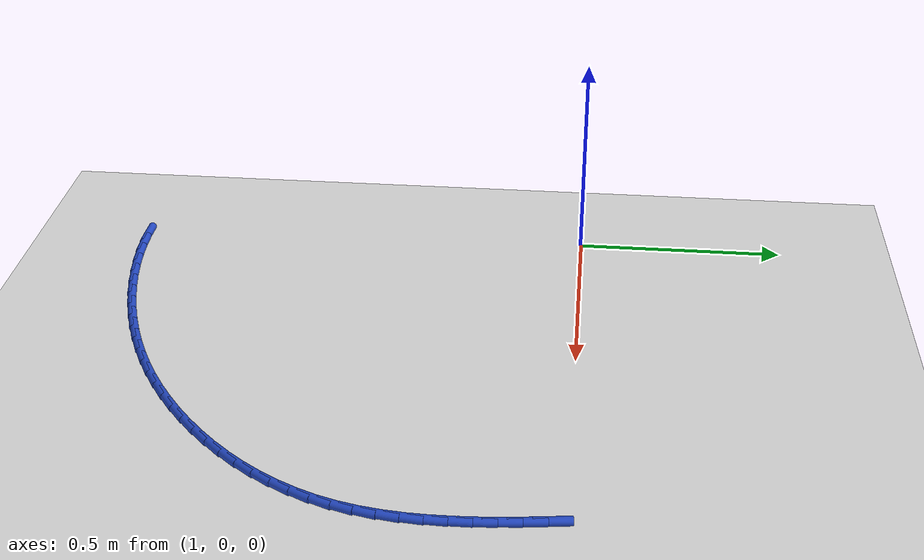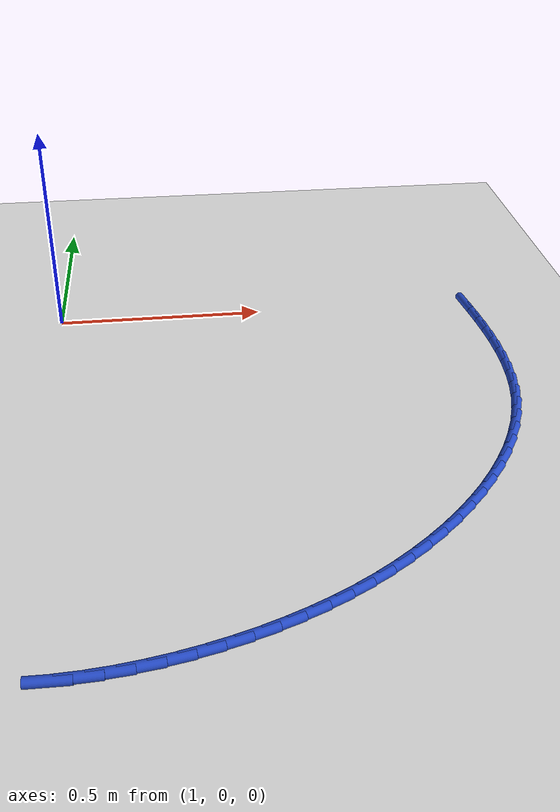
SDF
<sdf version="1.6">
 <world name="default">
  <model name="ground_plane">
   <static>1</static>
   <link name="link">
    <collision name="collision">
     <geometry><plane><normal>0 0 1</normal><size>100 100</size></plane></geometry>
     <surface><friction><ode><mu>100</mu><mu2>50</mu2></ode></friction></surface>
    </collision>
    <visual name="visual">
     <cast_shadows>0</cast_shadows>
     <geometry><plane><normal>0 0 1</normal><size>100 100</size></plane></geometry>
     <material>
      <script><uri>file://media/materials/scripts/gazebo.material</uri><name>Gazebo/WhiteGlow</name></script>
     </material>
    </visual>
   </link>
  </model>
  <model name="line">
   <link name="link_70">
    <pose>2.042514875771617 -0.028501425075891207 0.01 0 1.57 -1.4499922038196433</pose>
    <collision name="collision">
     <geometry><cylinder><radius>0.01</radius><length>0.08</length></cylinder></geometry>
    </collision>
    <visual name="visual">
     <material>
      <script><name>Gazebo/Blue</name><uri>file://media/materials/scripts/gazebo.material</uri></script>
     </material>
     <geometry><cylinder><radius>0.01</radius><length>0.08</length></cylinder></geometry>
    </visual>
   </link>
   <link name="link_71">
    <pose>2.0484158539259787 -0.07711106245376309 0.01 0 1.57 -1.4695109949228355</pose>
    <collision name="collision">
     <geometry><cylinder><radius>0.01</radius><length>0.08</length></cylinder></geometry>
    </collision>
    <visual name="visual">
     <material>
      <script><name>Gazebo/Blue</name><uri>file://media/materials/scripts/gazebo.material</uri></script>
     </material>
     <geometry><cylinder><radius>0.01</radius><length>0.08</length></cylinder></geometry>
    </visual>
   </link>
   <link name="link_72">
    <pose>2.0533560340569417 -0.12571904121435087 0.01 0 1.57 -1.4953580012741503</pose>
    <collision name="collision">
     <geometry><cylinder><radius>0.01</radius><length>0.08</length></cylinder></geometry>
    </collision>
    <visual name="visual">
     <material>
      <script><name>Gazebo/Blue</name><uri>file://media/materials/scripts/gazebo.material</uri></script>
     </material>
     <geometry><cylinder><radius>0.01</radius><length>0.08</length></cylinder></geometry>
    </visual>
   </link>
   <link name="link_73">
    <pose>2.0570218878270365 -0.17422087436894643 0.01 0 1.57 -1.527792261717642</pose>
    <collision name="collision">
     <geometry><cylinder><radius>0.01</radius><length>0.08</length></cylinder></geometry>
    </collision>
    <visual name="visual">
     <material>
      <script><name>Gazebo/Blue</name><uri>file://media/materials/scripts/gazebo.material</uri></script>
     </material>
     <geometry><cylinder><radius>0.01</radius><length>0.08</length></cylinder></geometry>
    </visual>
   </link>
   <link name="link_74">
    <pose>2.059099886898793 -0.22251207492883948 0.01 0 1.57 -1.567115008218786</pose>
    <collision name="collision">
     <geometry><cylinder><radius>0.01</radius><length>0.08</length></cylinder></geometry>
    </collision>
    <visual name="visual">
     <material>
      <script><name>Gazebo/Blue</name><uri>file://media/materials/scripts/gazebo.material</uri></script>
     </material>
     <geometry><cylinder><radius>0.01</radius><length>0.08</length></cylinder></geometry>
    </visual>
   </link>
   <link name="link_75">
    <pose>2.059276502934741 -0.27048815590532194 0.01 0 1.57 1.5279620207617808</pose>
    <collision name="collision">
     <geometry><cylinder><radius>0.01</radius><length>0.08</length></cylinder></geometry>
    </collision>
    <visual name="visual">
     <material>
      <script><name>Gazebo/Blue</name><uri>file://media/materials/scripts/gazebo.material</uri></script>
     </material>
     <geometry><cylinder><radius>0.01</radius><length>0.08</length></cylinder></geometry>
    </visual>
   </link>
   <link name="link_76">
    <pose>2.057238207597412 -0.31804463030968494 0.01 0 1.57 1.4740020768836912</pose>
    <collision name="collision">
     <geometry><cylinder><radius>0.01</radius><length>0.08</length></cylinder></geometry>
    </collision>
    <visual name="visual">
     <material>
      <script><name>Gazebo/Blue</name><uri>file://media/materials/scripts/gazebo.material</uri></script>
     </material>
     <geometry><cylinder><radius>0.01</radius><length>0.08</length></cylinder></geometry>
    </visual>
   </link>
   <link name="link_77">
    <pose>2.0526714725493354 -0.3650770111532199 0.01 0 1.57 1.4124752780973437</pose>
    <collision name="collision">
     <geometry><cylinder><radius>0.01</radius><length>0.08</length></cylinder></geometry>
    </collision>
    <visual name="visual">
     <material>
      <script><name>Gazebo/Blue</name><uri>file://media/materials/scripts/gazebo.material</uri></script>
     </material>
     <geometry><cylinder><radius>0.01</radius><length>0.08</length></cylinder></geometry>
    </visual>
   </link>
   <link name="link_78">
    <pose>2.0452627694530414 -0.4114808114472184 0.01 0 1.57 1.343481986703969</pose>
    <collision name="collision">
     <geometry><cylinder><radius>0.01</radius><length>0.08</length></cylinder></geometry>
    </collision>
    <visual name="visual">
     <material>
      <script><name>Gazebo/Blue</name><uri>file://media/materials/scripts/gazebo.material</uri></script>
     </material>
     <geometry><cylinder><radius>0.01</radius><length>0.08</length></cylinder></geometry>
    </visual>
   </link>
   <link name="link_79">
    <pose>2.034698569971061 -0.45715154420297033 0.01 0 1.57 1.267686488239939</pose>
    <collision name="collision">
     <geometry><cylinder><radius>0.01</radius><length>0.08</length></cylinder></geometry>
    </collision>
    <visual name="visual">
     <material>
      <script><name>Gazebo/Blue</name><uri>file://media/materials/scripts/gazebo.material</uri></script>
     </material>
     <geometry><cylinder><radius>0.01</radius><length>0.08</length></cylinder></geometry>
    </visual>
   </link>
   <link name="link_80">
    <pose>2.020677125272402 -0.5019847372103441 0.01 0 1.57 1.1912250676561806</pose>
    <collision name="collision">
     <geometry><cylinder><radius>0.01</radius><length>0.08</length></cylinder></geometry>
    </collision>
    <visual name="visual">
     <material>
      <script><name>Gazebo/Blue</name><uri>file://media/materials/scripts/gazebo.material</uri></script>
     </material>
     <geometry><cylinder><radius>0.01</radius><length>0.08</length></cylinder></geometry>
    </visual>
   </link>
   <link name="link_81">
    <pose>2.003168109604517 -0.5458762587867815 0.01 0 1.57 1.1196953972168433</pose>
    <collision name="collision">
     <geometry><cylinder><radius>0.01</radius><length>0.08</length></cylinder></geometry>
    </collision>
    <visual name="visual">
     <material>
      <script><name>Gazebo/Blue</name><uri>file://media/materials/scripts/gazebo.material</uri></script>
     </material>
     <geometry><cylinder><radius>0.01</radius><length>0.08</length></cylinder></geometry>
    </visual>
   </link>
   <link name="link_82">
    <pose>1.9824128952608207 -0.5887223181222723 0.01 0 1.57 1.0530714645488164</pose>
    <collision name="collision">
     <geometry><cylinder><radius>0.01</radius><length>0.08</length></cylinder></geometry>
    </collision>
    <visual name="visual">
     <material>
      <script><name>Gazebo/Blue</name><uri>file://media/materials/scripts/gazebo.material</uri></script>
     </material>
     <geometry><cylinder><radius>0.01</radius><length>0.08</length></cylinder></geometry>
    </visual>
   </link>
   <link name="link_83">
    <pose>1.9586646890347275 -0.6304191392543764 0.01 0 1.57 0.9909609513993489</pose>
    <collision name="collision">
     <geometry><cylinder><radius>0.01</radius><length>0.08</length></cylinder></geometry>
    </collision>
    <visual name="visual">
     <material>
      <script><name>Gazebo/Blue</name><uri>file://media/materials/scripts/gazebo.material</uri></script>
     </material>
     <geometry><cylinder><radius>0.01</radius><length>0.08</length></cylinder></geometry>
    </visual>
   </link>
   <link name="link_84">
    <pose>1.9321766977196502 -0.6708629462206556 0.01 0 1.57 0.932897009702139</pose>
    <collision name="collision">
     <geometry><cylinder><radius>0.01</radius><length>0.08</length></cylinder></geometry>
    </collision>
    <visual name="visual">
     <material>
      <script><name>Gazebo/Blue</name><uri>file://media/materials/scripts/gazebo.material</uri></script>
     </material>
     <geometry><cylinder><radius>0.01</radius><length>0.08</length></cylinder></geometry>
    </visual>
   </link>
   <link name="link_85">
    <pose>1.9032021281090032 -0.7099499630586706 0.01 0 1.57 0.8783749944448394</pose>
    <collision name="collision">
     <geometry><cylinder><radius>0.01</radius><length>0.08</length></cylinder></geometry>
    </collision>
    <visual name="visual">
     <material>
      <script><name>Gazebo/Blue</name><uri>file://media/materials/scripts/gazebo.material</uri></script>
     </material>
     <geometry><cylinder><radius>0.01</radius><length>0.08</length></cylinder></geometry>
    </visual>
   </link>
   <link name="link_86">
    <pose>1.8719941869962002 -0.7475764138059832 0.01 0 1.57 0.8268760785502955</pose>
    <collision name="collision">
     <geometry><cylinder><radius>0.01</radius><length>0.08</length></cylinder></geometry>
    </collision>
    <visual name="visual">
     <material>
      <script><name>Gazebo/Blue</name><uri>file://media/materials/scripts/gazebo.material</uri></script>
     </material>
     <geometry><cylinder><radius>0.01</radius><length>0.08</length></cylinder></geometry>
    </visual>
   </link>
   <link name="link_87">
    <pose>1.8388060811746545 -0.7836385225001544 0.01 0 1.57 0.777880195569827</pose>
    <collision name="collision">
     <geometry><cylinder><radius>0.01</radius><length>0.08</length></cylinder></geometry>
    </collision>
    <visual name="visual">
     <material>
      <script><name>Gazebo/Blue</name><uri>file://media/materials/scripts/gazebo.material</uri></script>
     </material>
     <geometry><cylinder><radius>0.01</radius><length>0.08</length></cylinder></geometry>
    </visual>
   </link>
   <link name="link_88">
    <pose>1.8038910174377807 -0.8180325131787443 0.01 0 1.57 0.7308707818596323</pose>
    <collision name="collision">
     <geometry><cylinder><radius>0.01</radius><length>0.08</length></cylinder></geometry>
    </collision>
    <visual name="visual">
     <material>
      <script><name>Gazebo/Blue</name><uri>file://media/materials/scripts/gazebo.material</uri></script>
     </material>
     <geometry><cylinder><radius>0.01</radius><length>0.08</length></cylinder></geometry>
    </visual>
   </link>
   <link name="link_89">
    <pose>1.7675022025789917 -0.8506546098793144 0.01 0 1.57 0.6853301468830977</pose>
    <collision name="collision">
     <geometry><cylinder><radius>0.01</radius><length>0.08</length></cylinder></geometry>
    </collision>
    <visual name="visual">
     <material>
      <script><name>Gazebo/Blue</name><uri>file://media/materials/scripts/gazebo.material</uri></script>
     </material>
     <geometry><cylinder><radius>0.01</radius><length>0.08</length></cylinder></geometry>
    </visual>
   </link>
   <link name="link_90">
    <pose>1.7298921163534886 -0.88140143189524 0.01 0 1.57 0.6404798782260996</pose>
    <collision name="collision">
     <geometry><cylinder><radius>0.01</radius><length>0.08</length></cylinder></geometry>
    </collision>
    <visual name="visual">
     <material>
      <script><name>Gazebo/Blue</name><uri>file://media/materials/scripts/gazebo.material</uri></script>
     </material>
     <geometry><cylinder><radius>0.01</radius><length>0.08</length></cylinder></geometry>
    </visual>
   </link>
   <link name="link_91">
    <pose>1.691235300190117 -0.9102119698507185 0.01 0 1.57 0.5956856967609964</pose>
    <collision name="collision">
     <geometry><cylinder><radius>0.01</radius><length>0.08</length></cylinder></geometry>
    </collision>
    <visual name="visual">
     <material>
      <script><name>Gazebo/Blue</name><uri>file://media/materials/scripts/gazebo.material</uri></script>
     </material>
     <geometry><cylinder><radius>0.01</radius><length>0.08</length></cylinder></geometry>
    </visual>
   </link>
   <link name="link_92">
    <pose>1.6515600447234886 -0.9371047239139053 0.01 0 1.57 0.5510744432334416</pose>
    <collision name="collision">
     <geometry><cylinder><radius>0.01</radius><length>0.08</length></cylinder></geometry>
    </collision>
    <visual name="visual">
     <material>
      <script><name>Gazebo/Blue</name><uri>file://media/materials/scripts/gazebo.material</uri></script>
     </material>
     <geometry><cylinder><radius>0.01</radius><length>0.08</length></cylinder></geometry>
    </visual>
   </link>
   <link name="link_93">
    <pose>1.6108785300907642 -0.9621069527579063 0.01 0 1.57 0.506839103273512</pose>
    <collision name="collision">
     <geometry><cylinder><radius>0.01</radius><length>0.08</length></cylinder></geometry>
    </collision>
    <visual name="visual">
     <material>
      <script><name>Gazebo/Blue</name><uri>file://media/materials/scripts/gazebo.material</uri></script>
     </material>
     <geometry><cylinder><radius>0.01</radius><length>0.08</length></cylinder></geometry>
    </visual>
   </link>
   <link name="link_94">
    <pose>1.569202936429106 -0.9852459150558264 0.01 0 1.57 0.4631637908015234</pose>
    <collision name="collision">
     <geometry><cylinder><radius>0.01</radius><length>0.08</length></cylinder></geometry>
    </collision>
    <visual name="visual">
     <material>
      <script><name>Gazebo/Blue</name><uri>file://media/materials/scripts/gazebo.material</uri></script>
     </material>
     <geometry><cylinder><radius>0.01</radius><length>0.08</length></cylinder></geometry>
    </visual>
   </link>
   <link name="link_95">
    <pose>1.5265454438756747 -1.0065488694807718 0.01 0 1.57 0.4202195637603973</pose>
    <collision name="collision">
     <geometry><cylinder><radius>0.01</radius><length>0.08</length></cylinder></geometry>
    </collision>
    <visual name="visual">
     <material>
      <script><name>Gazebo/Blue</name><uri>file://media/materials/scripts/gazebo.material</uri></script>
     </material>
     <geometry><cylinder><radius>0.01</radius><length>0.08</length></cylinder></geometry>
    </visual>
   </link>
   <link name="link_96">
    <pose>1.4829182325676338 -1.0260430747058478 0.01 0 1.57 0.3781610038826565</pose>
    <collision name="collision">
     <geometry><cylinder><radius>0.01</radius><length>0.08</length></cylinder></geometry>
    </collision>
    <visual name="visual">
     <material>
      <script><name>Gazebo/Blue</name><uri>file://media/materials/scripts/gazebo.material</uri></script>
     </material>
     <geometry><cylinder><radius>0.01</radius><length>0.08</length></cylinder></geometry>
    </visual>
   </link>
   <link name="link_97">
    <pose>1.4383334826421437 -1.0437557894041594 0.01 0 1.57 0.33712370213942944</pose>
    <collision name="collision">
     <geometry><cylinder><radius>0.01</radius><length>0.08</length></cylinder></geometry>
    </collision>
    <visual name="visual">
     <material>
      <script><name>Gazebo/Blue</name><uri>file://media/materials/scripts/gazebo.material</uri></script>
     </material>
     <geometry><cylinder><radius>0.01</radius><length>0.08</length></cylinder></geometry>
    </visual>
   </link>
   <link name="link_98">
    <pose>1.3928033742363664 -1.0597142722488124 0.01 0 1.57 0.2972166234191361</pose>
    <collision name="collision">
     <geometry><cylinder><radius>0.01</radius><length>0.08</length></cylinder></geometry>
    </collision>
    <visual name="visual">
     <material>
      <script><name>Gazebo/Blue</name><uri>file://media/materials/scripts/gazebo.material</uri></script>
     </material>
     <geometry><cylinder><radius>0.01</radius><length>0.08</length></cylinder></geometry>
    </visual>
   </link>
   <link name="link_99">
    <pose>1.3463406262841136 -1.0739453078454801 0.01 0 1.57 0.2578395351621872</pose>
    <collision name="collision">
     <geometry><cylinder><radius>0.01</radius><length>0.08</length></cylinder></geometry>
    </collision>
    <visual name="visual">
     <material>
      <script><name>Gazebo/Blue</name><uri>file://media/materials/scripts/gazebo.material</uri></script>
     </material>
     <geometry><cylinder><radius>0.01</radius><length>0.08</length></cylinder></geometry>
    </visual>
   </link>
   <link name="link_100">
    <pose>1.2990149444193237 -1.0864255402902363 0.01 0 1.57 0.21753600748907764</pose>
    <collision name="collision">
     <geometry><cylinder><radius>0.01</radius><length>0.08</length></cylinder></geometry>
    </collision>
    <visual name="visual">
     <material>
      <script><name>Gazebo/Blue</name><uri>file://media/materials/scripts/gazebo.material</uri></script>
     </material>
     <geometry><cylinder><radius>0.01</radius><length>0.08</length></cylinder></geometry>
    </visual>
   </link>
   <link name="link_101">
    <pose>1.2510025500642328 -1.0970378943394916 0.01 0 1.57 0.17579798147367062</pose>
    <collision name="collision">
     <geometry><cylinder><radius>0.01</radius><length>0.08</length></cylinder></geometry>
    </collision>
    <visual name="visual">
     <material>
      <script><name>Gazebo/Blue</name><uri>file://media/materials/scripts/gazebo.material</uri></script>
     </material>
     <geometry><cylinder><radius>0.01</radius><length>0.08</length></cylinder></geometry>
    </visual>
   </link>
   <link name="link_102">
    <pose>1.2024913412490317 -1.105655020930116 0.01 0 1.57 0.13224830797214676</pose>
    <collision name="collision">
     <geometry><cylinder><radius>0.01</radius><length>0.08</length></cylinder></geometry>
    </collision>
    <visual name="visual">
     <material>
      <script><name>Gazebo/Blue</name><uri>file://media/materials/scripts/gazebo.material</uri></script>
     </material>
     <geometry><cylinder><radius>0.01</radius><length>0.08</length></cylinder></geometry>
    </visual>
   </link>
   <link name="link_103">
    <pose>1.1536692160039115 -1.1121495709989797 0.01 0 1.57 0.08650564801975826</pose>
    <collision name="collision">
     <geometry><cylinder><radius>0.01</radius><length>0.08</length></cylinder></geometry>
    </collision>
    <visual name="visual">
     <material>
      <script><name>Gazebo/Blue</name><uri>file://media/materials/scripts/gazebo.material</uri></script>
     </material>
     <geometry><cylinder><radius>0.01</radius><length>0.08</length></cylinder></geometry>
    </visual>
   </link>
   <link name="link_104">
    <pose>1.1047240723590634 -1.116394195482952 0.01 0 1.57 0.0381839632819085</pose>
    <collision name="collision">
     <geometry><cylinder><radius>0.01</radius><length>0.08</length></cylinder></geometry>
    </collision>
    <visual name="visual">
     <material>
      <script><name>Gazebo/Blue</name><uri>file://media/materials/scripts/gazebo.material</uri></script>
     </material>
     <geometry><cylinder><radius>0.01</radius><length>0.08</length></cylinder></geometry>
    </visual>
   </link>
   <link name="link_105">
    <pose>1.0558438083446804 -1.1182615453189026 0.01 0 1.57 -0.01310446916956569</pose>
    <collision name="collision">
     <geometry><cylinder><radius>0.01</radius><length>0.08</length></cylinder></geometry>
    </collision>
    <visual name="visual">
     <material>
      <script><name>Gazebo/Blue</name><uri>file://media/materials/scripts/gazebo.material</uri></script>
     </material>
     <geometry><cylinder><radius>0.01</radius><length>0.08</length></cylinder></geometry>
    </visual>
   </link>
  </model>
 </world>
</sdf>
